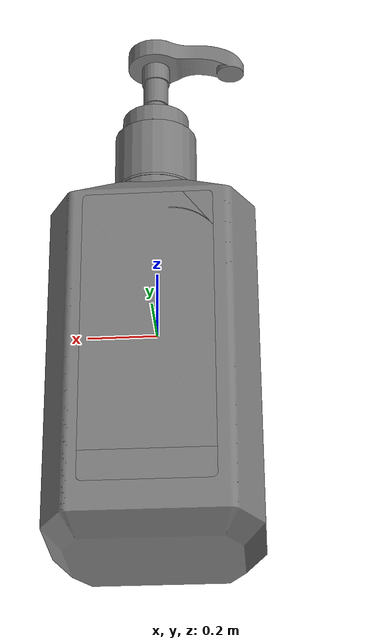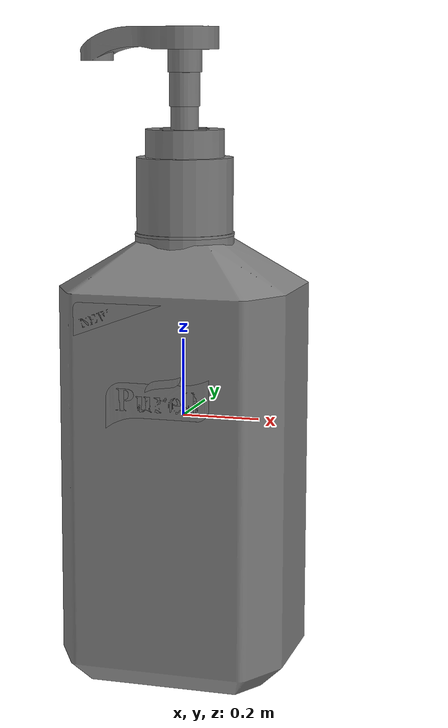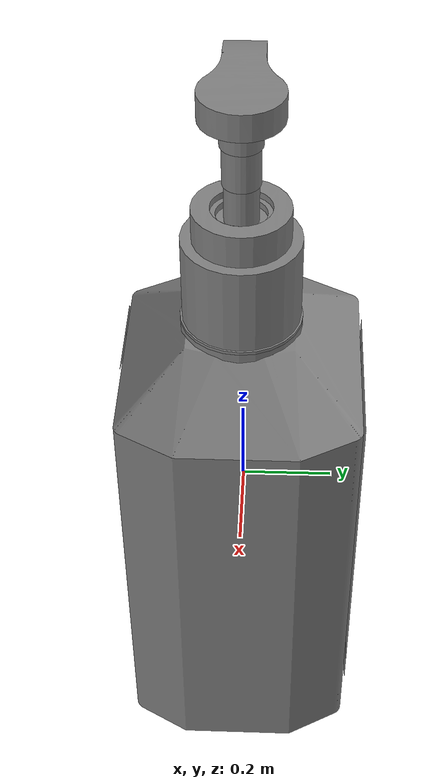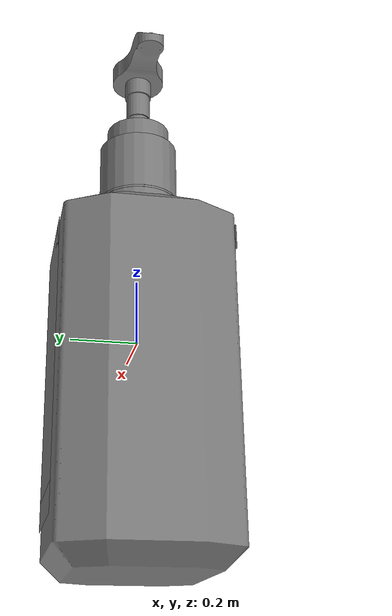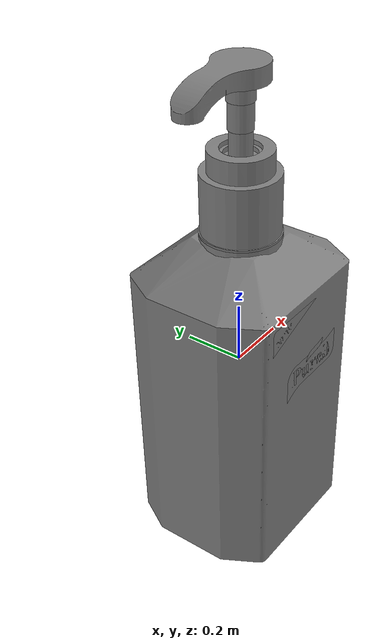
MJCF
<?xml version='1.0' encoding='UTF-8'?>
<mujoco model="partnet_ub630f30d-bc91-4666-bca8-7cff40a9acf5">
  <compiler angle="radian"/>
  <asset>
    <mesh name="original_23" content_type="model/obj" file="textured_objs/original_23.obj"/>
    <mesh name="original_21" content_type="model/obj" file="textured_objs/original_21.obj"/>
    <mesh name="original_22" content_type="model/obj" file="textured_objs/original_22.obj"/>
    <mesh name="original_27" content_type="model/obj" file="textured_objs/original_27.obj"/>
    <mesh name="original_26" content_type="model/obj" file="textured_objs/original_26.obj"/>
    <mesh name="original_24" content_type="model/obj" file="textured_objs/original_24.obj"/>
    <mesh name="original_10" content_type="model/obj" file="textured_objs/original_10.obj"/>
    <mesh name="original_11" content_type="model/obj" file="textured_objs/original_11.obj"/>
    <mesh name="original_8" content_type="model/obj" file="textured_objs/original_8.obj"/>
    <mesh name="original_5" content_type="model/obj" file="textured_objs/original_5.obj"/>
    <mesh name="original_6" content_type="model/obj" file="textured_objs/original_6.obj"/>
    <mesh name="original_7" content_type="model/obj" file="textured_objs/original_7.obj"/>
    <mesh name="original_12" content_type="model/obj" file="textured_objs/original_12.obj"/>
    <mesh name="original_14" content_type="model/obj" file="textured_objs/original_14.obj"/>
    <mesh name="original_13" content_type="model/obj" file="textured_objs/original_13.obj"/>
    <mesh name="original_30" content_type="model/obj" file="textured_objs/original_30.obj"/>
    <mesh name="original_36" content_type="model/obj" file="textured_objs/original_36.obj"/>
    <mesh name="original_41" content_type="model/obj" file="textured_objs/original_41.obj"/>
    <mesh name="original_43" content_type="model/obj" file="textured_objs/original_43.obj"/>
    <mesh name="original_52" content_type="model/obj" file="textured_objs/original_52.obj"/>
    <mesh name="original_3" content_type="model/obj" file="textured_objs/original_3.obj"/>
    <mesh name="original_2" content_type="model/obj" file="textured_objs/original_2.obj"/>
    <mesh name="original_16" content_type="model/obj" file="textured_objs/original_16.obj"/>
    <mesh name="original_45" content_type="model/obj" file="textured_objs/original_45.obj"/>
    <mesh name="original_35" content_type="model/obj" file="textured_objs/original_35.obj"/>
    <mesh name="original_49" content_type="model/obj" file="textured_objs/original_49.obj"/>
    <mesh name="original_39" content_type="model/obj" file="textured_objs/original_39.obj"/>
    <mesh name="original_51" content_type="model/obj" file="textured_objs/original_51.obj"/>
    <mesh name="original_50" content_type="model/obj" file="textured_objs/original_50.obj"/>
    <mesh name="original_31" content_type="model/obj" file="textured_objs/original_31.obj"/>
    <mesh name="original_37" content_type="model/obj" file="textured_objs/original_37.obj"/>
    <mesh name="original_38" content_type="model/obj" file="textured_objs/original_38.obj"/>
    <mesh name="original_34" content_type="model/obj" file="textured_objs/original_34.obj"/>
    <mesh name="original_18" content_type="model/obj" file="textured_objs/original_18.obj"/>
    <mesh name="original_17" content_type="model/obj" file="textured_objs/original_17.obj"/>
    <mesh name="original_20" content_type="model/obj" file="textured_objs/original_20.obj"/>
    <mesh name="original_32" content_type="model/obj" file="textured_objs/original_32.obj"/>
    <mesh name="original_47" content_type="model/obj" file="textured_objs/original_47.obj"/>
    <mesh name="original_19" content_type="model/obj" file="textured_objs/original_19.obj"/>
    <mesh name="original_40" content_type="model/obj" file="textured_objs/original_40.obj"/>
    <mesh name="original_46" content_type="model/obj" file="textured_objs/original_46.obj"/>
  </asset>
  <worldbody>
    <body name="base">
      <body name="link_2" quat="0.5 0.5 -0.5 -0.5">
        <geom type="mesh" mesh="original_30"/>
        <geom type="mesh" mesh="original_36"/>
        <geom type="mesh" mesh="original_41"/>
        <geom type="mesh" mesh="original_43"/>
        <geom type="mesh" mesh="original_52"/>
        <geom type="mesh" mesh="original_3"/>
        <geom type="mesh" mesh="original_2"/>
        <geom type="mesh" mesh="original_16"/>
        <geom type="mesh" mesh="original_45"/>
        <geom type="mesh" mesh="original_35"/>
        <geom type="mesh" mesh="original_49"/>
        <geom type="mesh" mesh="original_39"/>
        <geom type="mesh" mesh="original_51"/>
        <geom type="mesh" mesh="original_50"/>
        <geom type="mesh" mesh="original_31"/>
        <geom type="mesh" mesh="original_37"/>
        <geom type="mesh" mesh="original_38"/>
        <geom type="mesh" mesh="original_34"/>
        <geom type="mesh" mesh="original_18"/>
        <geom type="mesh" mesh="original_17"/>
        <geom type="mesh" mesh="original_20"/>
        <geom type="mesh" mesh="original_32"/>
        <geom type="mesh" mesh="original_47"/>
        <geom type="mesh" mesh="original_19"/>
        <geom type="mesh" mesh="original_40"/>
        <geom type="mesh" mesh="original_46"/>
        <body name="link_1_helper" pos="0.003521 0 -0.0047255">
          <inertial pos="0 0 0" mass="1e-06" diaginertia="1e-10 1e-10 1e-10"/>
          <joint name="joint_4" pos="0 0 0" axis="0 1 0" type="slide" range="0 0.116"/>
          <body name="link_1">
            <joint name="joint_1" pos="0 0 0" axis="0 1 0"/>
            <geom pos="-0.003521 0 0.0047255" quat="1 0 0 0" type="mesh" mesh="original_10"/>
            <geom pos="-0.003521 0 0.0047255" quat="1 0 0 0" type="mesh" mesh="original_11"/>
            <geom pos="-0.003521 0 0.0047255" quat="1 0 0 0" type="mesh" mesh="original_8"/>
            <geom pos="-0.003521 0 0.0047255" quat="1 0 0 0" type="mesh" mesh="original_5"/>
            <geom pos="-0.003521 0 0.0047255" quat="1 0 0 0" type="mesh" mesh="original_6"/>
            <geom pos="-0.003521 0 0.0047255" quat="1 0 0 0" type="mesh" mesh="original_7"/>
            <geom pos="-0.003521 0 0.0047255" quat="1 0 0 0" type="mesh" mesh="original_12"/>
            <geom pos="-0.003521 0 0.0047255" quat="1 0 0 0" type="mesh" mesh="original_14"/>
            <geom pos="-0.003521 0 0.0047255" quat="1 0 0 0" type="mesh" mesh="original_13"/>
            <body name="link_0_helper" pos="0.000332964 0 0.000141944">
              <inertial pos="0 0 0" mass="1e-06" diaginertia="1e-10 1e-10 1e-10"/>
              <joint name="joint_3" pos="0 0 0" axis="0 -1 0" type="slide" range="0 0.19"/>
              <body name="link_0">
                <joint name="joint_0" pos="0 0 0" axis="0 1 0"/>
                <geom pos="-0.00385396 0 0.00458356" quat="1 0 0 0" type="mesh" mesh="original_23"/>
                <geom pos="-0.00385396 0 0.00458356" quat="1 0 0 0" type="mesh" mesh="original_21"/>
                <geom pos="-0.00385396 0 0.00458356" quat="1 0 0 0" type="mesh" mesh="original_22"/>
                <geom pos="-0.00385396 0 0.00458356" quat="1 0 0 0" type="mesh" mesh="original_27"/>
                <geom pos="-0.00385396 0 0.00458356" quat="1 0 0 0" type="mesh" mesh="original_26"/>
                <geom pos="-0.00385396 0 0.00458356" quat="1 0 0 0" type="mesh" mesh="original_24"/>
              </body>
            </body>
          </body>
        </body>
      </body>
    </body>
  </worldbody>
</mujoco>
